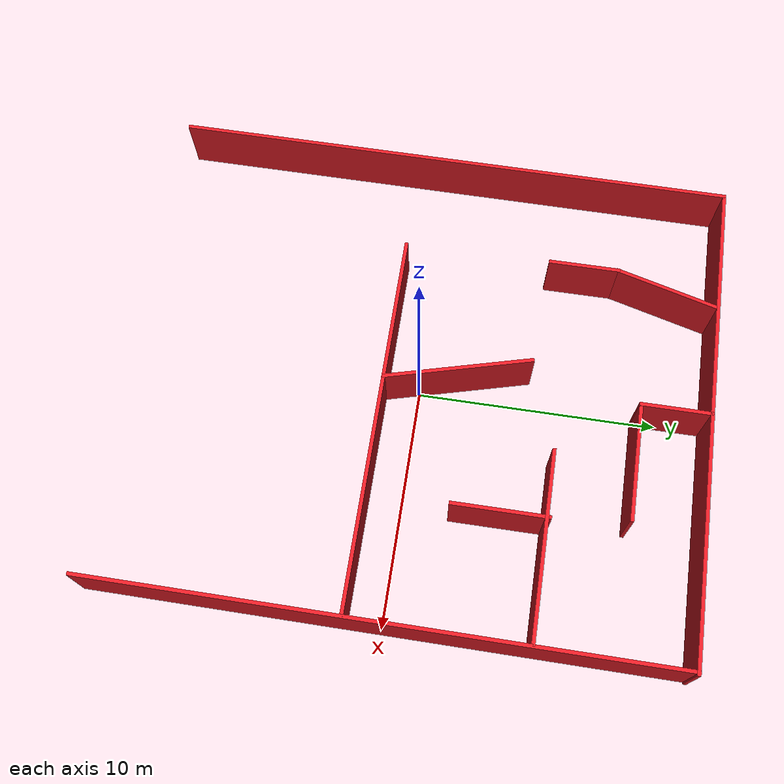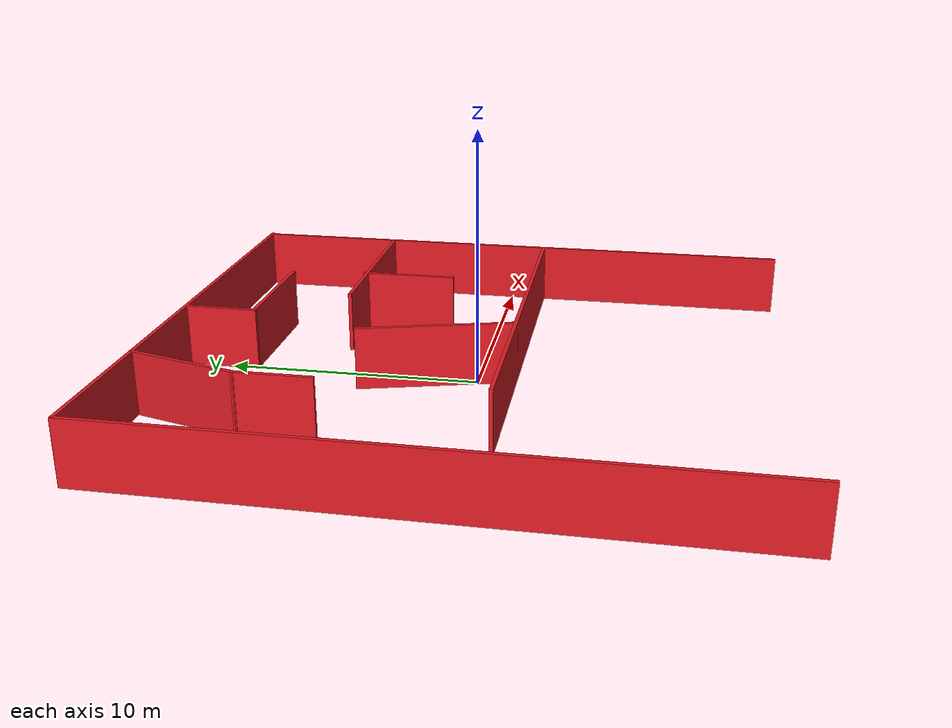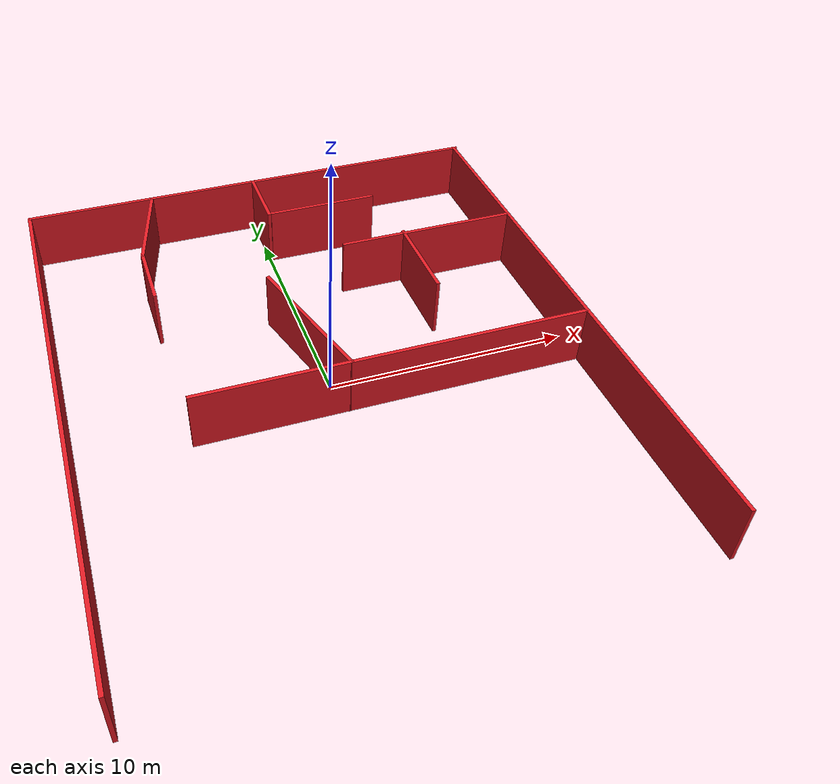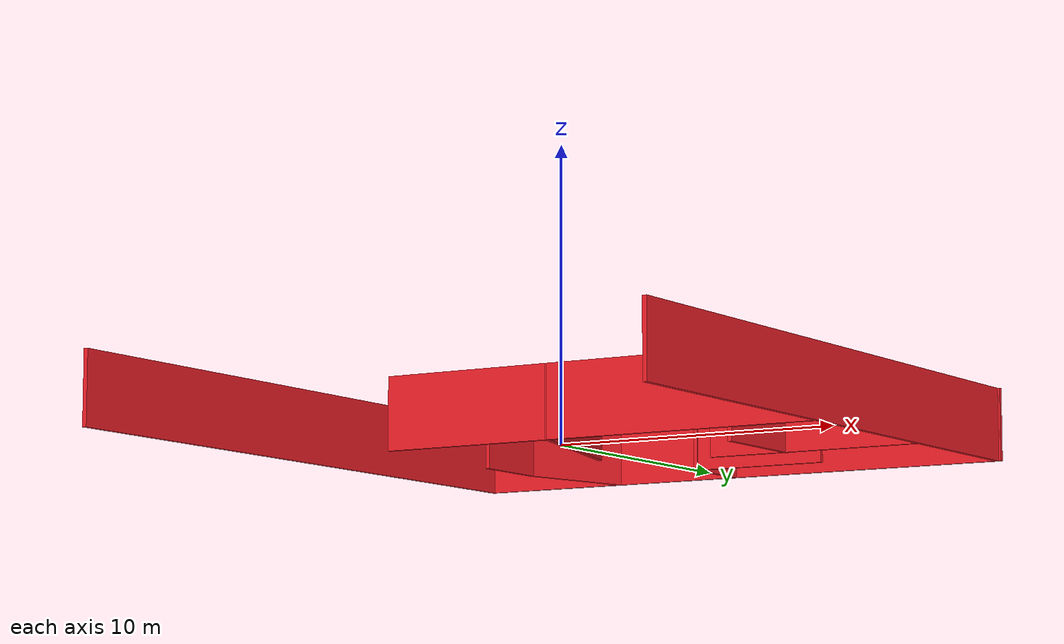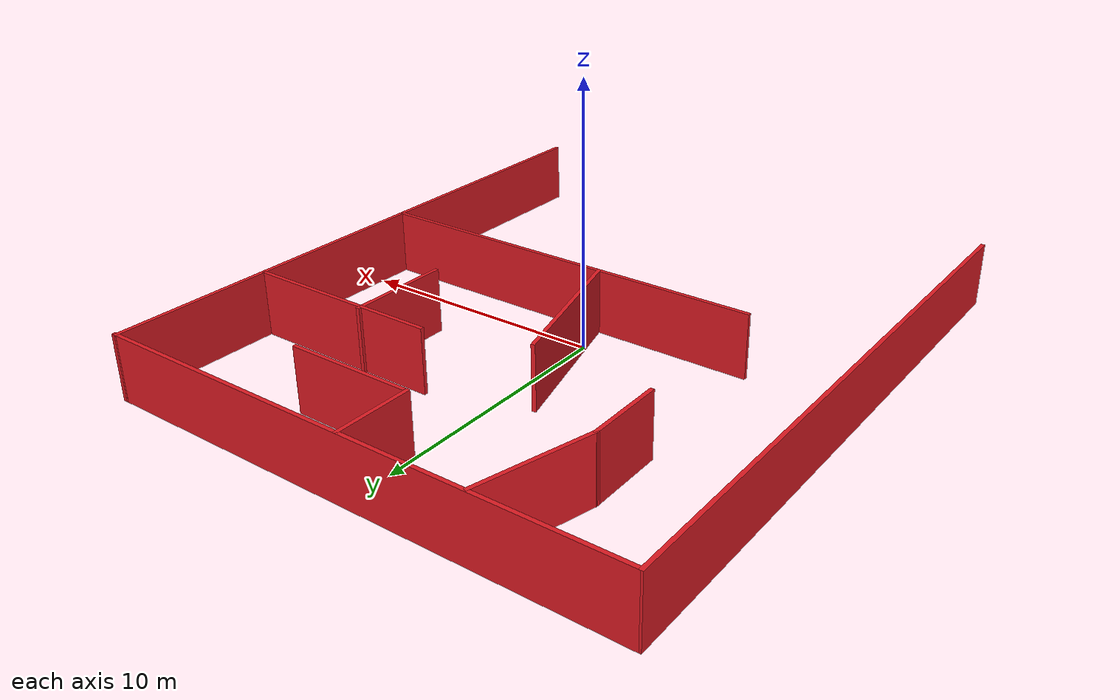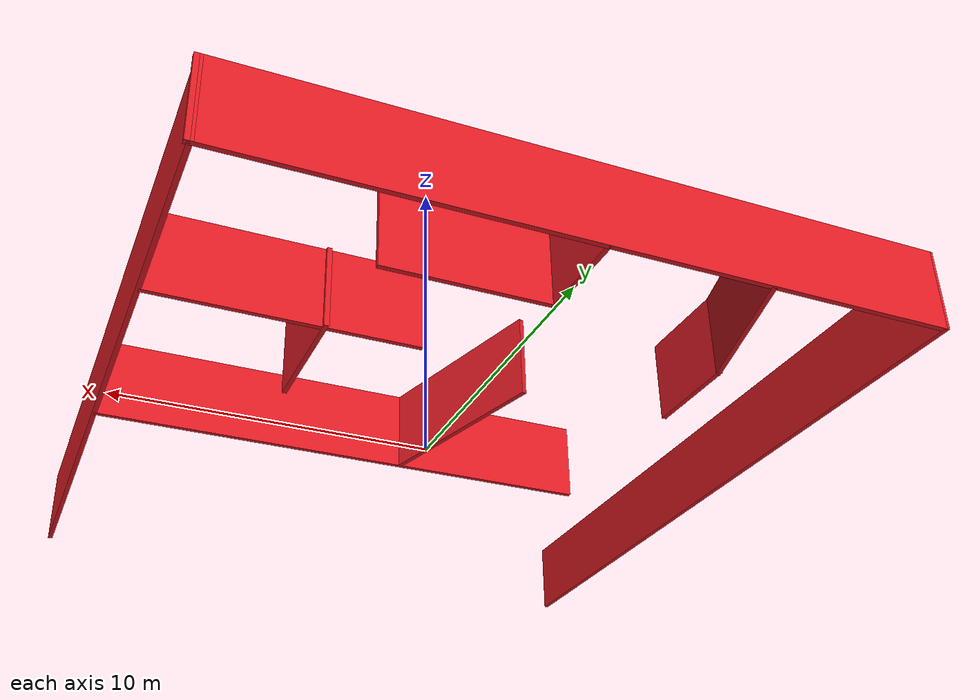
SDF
<?xml version='1.0'?>
<sdf version='1.7'>
  <model name='BuildingEnv'>
    <link name='Wall_0'>
      <pose>0.08905 11.8603 0 0 -0 0</pose>
      <self_collide>0</self_collide>
      <enable_wind>0</enable_wind>
      <kinematic>0</kinematic>
      <visual name='Wall_0_Visual'>
        <pose>0 0 1.25 0 -0 0</pose>
        <geometry>
          <box>
            <size>20.5 0.15 2.5</size>
          </box>
        </geometry>
        <material>
          <script>
            <uri>file://media/materials/scripts/gazebo.material</uri>
            <name>Gazebo/Grey</name>
          </script>
          <ambient>0.878431 0.105882 0.141176 1</ambient>
          <shader type='pixel'/>
        </material>
        <meta>
          <layer>0</layer>
        </meta>
        <transparency>0</transparency>
        <cast_shadows>1</cast_shadows>
      </visual>
      <collision name='Wall_0_Collision'>
        <laser_retro>0</laser_retro>
        <max_contacts>10</max_contacts>
        <pose>0 0 1.25 0 -0 0</pose>
        <geometry>
          <box>
            <size>20.5 0.15 2.5</size>
          </box>
        </geometry>
        <surface>
          <friction>
            <ode>
              <mu>1</mu>
              <mu2>1</mu2>
              <fdir1>0 0 0</fdir1>
              <slip1>0</slip1>
              <slip2>0</slip2>
            </ode>
            <torsional>
              <coefficient>1</coefficient>
              <patch_radius>0</patch_radius>
              <surface_radius>0</surface_radius>
              <use_patch_radius>1</use_patch_radius>
              <ode>
                <slip>0</slip>
              </ode>
            </torsional>
          </friction>
          <bounce>
            <restitution_coefficient>0</restitution_coefficient>
            <threshold>1e+06</threshold>
          </bounce>
          <contact>
            <collide_without_contact>0</collide_without_contact>
            <collide_without_contact_bitmask>1</collide_without_contact_bitmask>
            <collide_bitmask>1</collide_bitmask>
            <ode>
              <soft_cfm>0</soft_cfm>
              <soft_erp>0.2</soft_erp>
              <kp>1e+13</kp>
              <kd>1</kd>
              <max_vel>0.01</max_vel>
              <min_depth>0</min_depth>
            </ode>
            <bullet>
              <split_impulse>1</split_impulse>
              <split_impulse_penetration_threshold>-0.01</split_impulse_penetration_threshold>
              <soft_cfm>0</soft_cfm>
              <soft_erp>0.2</soft_erp>
              <kp>1e+13</kp>
              <kd>1</kd>
            </bullet>
          </contact>
        </surface>
      </collision>
    </link>
    <link name='Wall_13'>
      <pose>2.1545 -1.41675 0 0 -0 3.14159</pose>
      <self_collide>0</self_collide>
      <enable_wind>0</enable_wind>
      <kinematic>0</kinematic>
      <visual name='Wall_13_Visual'>
        <pose>0 0 1.25 0 -0 0</pose>
        <geometry>
          <box>
            <size>16 0.15 2.5</size>
          </box>
        </geometry>
        <material>
          <script>
            <uri>file://media/materials/scripts/gazebo.material</uri>
            <name>Gazebo/Grey</name>
          </script>
          <ambient>0.878431 0.105882 0.141176 1</ambient>
          <shader type='pixel'/>
        </material>
        <meta>
          <layer>0</layer>
        </meta>
        <transparency>0</transparency>
        <cast_shadows>1</cast_shadows>
      </visual>
      <collision name='Wall_13_Collision'>
        <laser_retro>0</laser_retro>
        <max_contacts>10</max_contacts>
        <pose>0 0 1.25 0 -0 0</pose>
        <geometry>
          <box>
            <size>16 0.15 2.5</size>
          </box>
        </geometry>
        <surface>
          <friction>
            <ode>
              <mu>1</mu>
              <mu2>1</mu2>
              <fdir1>0 0 0</fdir1>
              <slip1>0</slip1>
              <slip2>0</slip2>
            </ode>
            <torsional>
              <coefficient>1</coefficient>
              <patch_radius>0</patch_radius>
              <surface_radius>0</surface_radius>
              <use_patch_radius>1</use_patch_radius>
              <ode>
                <slip>0</slip>
              </ode>
            </torsional>
          </friction>
          <bounce>
            <restitution_coefficient>0</restitution_coefficient>
            <threshold>1e+06</threshold>
          </bounce>
          <contact>
            <collide_without_contact>0</collide_without_contact>
            <collide_without_contact_bitmask>1</collide_without_contact_bitmask>
            <collide_bitmask>1</collide_bitmask>
            <ode>
              <soft_cfm>0</soft_cfm>
              <soft_erp>0.2</soft_erp>
              <kp>1e+13</kp>
              <kd>1</kd>
              <max_vel>0.01</max_vel>
              <min_depth>0</min_depth>
            </ode>
            <bullet>
              <split_impulse>1</split_impulse>
              <split_impulse_penetration_threshold>-0.01</split_impulse_penetration_threshold>
              <soft_cfm>0</soft_cfm>
              <soft_erp>0.2</soft_erp>
              <kp>1e+13</kp>
              <kd>1</kd>
            </bullet>
          </contact>
        </surface>
      </collision>
    </link>
    <link name='Wall_15'>
      <pose>6.28482 5.76033 0 0 -0 3.14159</pose>
      <self_collide>0</self_collide>
      <enable_wind>0</enable_wind>
      <kinematic>0</kinematic>
      <visual name='Wall_15_Visual'>
        <pose>0 0 1.25 0 -0 0</pose>
        <geometry>
          <box>
            <size>7.75 0.15 2.5</size>
          </box>
        </geometry>
        <material>
          <script>
            <uri>file://media/materials/scripts/gazebo.material</uri>
            <name>Gazebo/Grey</name>
          </script>
          <ambient>0.878431 0.105882 0.141176 1</ambient>
          <shader type='pixel'/>
        </material>
        <meta>
          <layer>0</layer>
        </meta>
        <transparency>0</transparency>
        <cast_shadows>1</cast_shadows>
      </visual>
      <collision name='Wall_15_Collision'>
        <laser_retro>0</laser_retro>
        <max_contacts>10</max_contacts>
        <pose>0 0 1.25 0 -0 0</pose>
        <geometry>
          <box>
            <size>7.75 0.15 2.5</size>
          </box>
        </geometry>
        <surface>
          <friction>
            <ode>
              <mu>1</mu>
              <mu2>1</mu2>
              <fdir1>0 0 0</fdir1>
              <slip1>0</slip1>
              <slip2>0</slip2>
            </ode>
            <torsional>
              <coefficient>1</coefficient>
              <patch_radius>0</patch_radius>
              <surface_radius>0</surface_radius>
              <use_patch_radius>1</use_patch_radius>
              <ode>
                <slip>0</slip>
              </ode>
            </torsional>
          </friction>
          <bounce>
            <restitution_coefficient>0</restitution_coefficient>
            <threshold>1e+06</threshold>
          </bounce>
          <contact>
            <collide_without_contact>0</collide_without_contact>
            <collide_without_contact_bitmask>1</collide_without_contact_bitmask>
            <collide_bitmask>1</collide_bitmask>
            <ode>
              <soft_cfm>0</soft_cfm>
              <soft_erp>0.2</soft_erp>
              <kp>1e+13</kp>
              <kd>1</kd>
              <max_vel>0.01</max_vel>
              <min_depth>0</min_depth>
            </ode>
            <bullet>
              <split_impulse>1</split_impulse>
              <split_impulse_penetration_threshold>-0.01</split_impulse_penetration_threshold>
              <soft_cfm>0</soft_cfm>
              <soft_erp>0.2</soft_erp>
              <kp>1e+13</kp>
              <kd>1</kd>
            </bullet>
          </contact>
        </surface>
      </collision>
    </link>
    <link name='Wall_17'>
      <pose>5.21609 3.94233 0 0 0 -1.5708</pose>
      <self_collide>0</self_collide>
      <enable_wind>0</enable_wind>
      <kinematic>0</kinematic>
      <visual name='Wall_17_Visual'>
        <pose>0 0 1.25 0 -0 0</pose>
        <geometry>
          <box>
            <size>4 0.15 2.5</size>
          </box>
        </geometry>
        <material>
          <script>
            <uri>file://media/materials/scripts/gazebo.material</uri>
            <name>Gazebo/Grey</name>
          </script>
          <ambient>0.878431 0.105882 0.141176 1</ambient>
          <shader type='pixel'/>
        </material>
        <meta>
          <layer>0</layer>
        </meta>
        <transparency>0</transparency>
        <cast_shadows>1</cast_shadows>
      </visual>
      <collision name='Wall_17_Collision'>
        <laser_retro>0</laser_retro>
        <max_contacts>10</max_contacts>
        <pose>0 0 1.25 0 -0 0</pose>
        <geometry>
          <box>
            <size>4 0.15 2.5</size>
          </box>
        </geometry>
        <surface>
          <friction>
            <ode>
              <mu>1</mu>
              <mu2>1</mu2>
              <fdir1>0 0 0</fdir1>
              <slip1>0</slip1>
              <slip2>0</slip2>
            </ode>
            <torsional>
              <coefficient>1</coefficient>
              <patch_radius>0</patch_radius>
              <surface_radius>0</surface_radius>
              <use_patch_radius>1</use_patch_radius>
              <ode>
                <slip>0</slip>
              </ode>
            </torsional>
          </friction>
          <bounce>
            <restitution_coefficient>0</restitution_coefficient>
            <threshold>1e+06</threshold>
          </bounce>
          <contact>
            <collide_without_contact>0</collide_without_contact>
            <collide_without_contact_bitmask>1</collide_without_contact_bitmask>
            <collide_bitmask>1</collide_bitmask>
            <ode>
              <soft_cfm>0</soft_cfm>
              <soft_erp>0.2</soft_erp>
              <kp>1e+13</kp>
              <kd>1</kd>
              <max_vel>0.01</max_vel>
              <min_depth>0</min_depth>
            </ode>
            <bullet>
              <split_impulse>1</split_impulse>
              <split_impulse_penetration_threshold>-0.01</split_impulse_penetration_threshold>
              <soft_cfm>0</soft_cfm>
              <soft_erp>0.2</soft_erp>
              <kp>1e+13</kp>
              <kd>1</kd>
            </bullet>
          </contact>
        </surface>
      </collision>
    </link>
    <link name='Wall_19'>
      <pose>-5.29831 9.70522 0 0 0 -1.8326</pose>
      <self_collide>0</self_collide>
      <enable_wind>0</enable_wind>
      <kinematic>0</kinematic>
      <visual name='Wall_19_Visual'>
        <pose>0 0 1.25 0 -0 0</pose>
        <geometry>
          <box>
            <size>4.5 0.15 2.5</size>
          </box>
        </geometry>
        <material>
          <script>
            <uri>file://media/materials/scripts/gazebo.material</uri>
            <name>Gazebo/Grey</name>
          </script>
          <ambient>0.878431 0.105882 0.141176 1</ambient>
          <shader type='pixel'/>
        </material>
        <meta>
          <layer>0</layer>
        </meta>
        <transparency>0</transparency>
        <cast_shadows>1</cast_shadows>
      </visual>
      <collision name='Wall_19_Collision'>
        <laser_retro>0</laser_retro>
        <max_contacts>10</max_contacts>
        <pose>0 0 1.25 0 -0 0</pose>
        <geometry>
          <box>
            <size>4.5 0.15 2.5</size>
          </box>
        </geometry>
        <surface>
          <friction>
            <ode>
              <mu>1</mu>
              <mu2>1</mu2>
              <fdir1>0 0 0</fdir1>
              <slip1>0</slip1>
              <slip2>0</slip2>
            </ode>
            <torsional>
              <coefficient>1</coefficient>
              <patch_radius>0</patch_radius>
              <surface_radius>0</surface_radius>
              <use_patch_radius>1</use_patch_radius>
              <ode>
                <slip>0</slip>
              </ode>
            </torsional>
          </friction>
          <bounce>
            <restitution_coefficient>0</restitution_coefficient>
            <threshold>1e+06</threshold>
          </bounce>
          <contact>
            <collide_without_contact>0</collide_without_contact>
            <collide_without_contact_bitmask>1</collide_without_contact_bitmask>
            <collide_bitmask>1</collide_bitmask>
            <ode>
              <soft_cfm>0</soft_cfm>
              <soft_erp>0.2</soft_erp>
              <kp>1e+13</kp>
              <kd>1</kd>
              <max_vel>0.01</max_vel>
              <min_depth>0</min_depth>
            </ode>
            <bullet>
              <split_impulse>1</split_impulse>
              <split_impulse_penetration_threshold>-0.01</split_impulse_penetration_threshold>
              <soft_cfm>0</soft_cfm>
              <soft_erp>0.2</soft_erp>
              <kp>1e+13</kp>
              <kd>1</kd>
            </bullet>
          </contact>
        </surface>
      </collision>
    </link>
    <link name='Wall_2'>
      <pose>10.1398 0 0 0 0 -1.57531</pose>
      <self_collide>0</self_collide>
      <enable_wind>0</enable_wind>
      <kinematic>0</kinematic>
      <visual name='Wall_2_Visual'>
        <pose>0 0 1.25 0 -0 0</pose>
        <geometry>
          <box>
            <size>23.8709 0.15 2.5</size>
          </box>
        </geometry>
        <material>
          <script>
            <uri>file://media/materials/scripts/gazebo.material</uri>
            <name>Gazebo/Grey</name>
          </script>
          <ambient>0.878431 0.105882 0.141176 1</ambient>
          <shader type='pixel'/>
        </material>
        <meta>
          <layer>0</layer>
        </meta>
        <transparency>0</transparency>
        <cast_shadows>1</cast_shadows>
      </visual>
      <collision name='Wall_2_Collision'>
        <laser_retro>0</laser_retro>
        <max_contacts>10</max_contacts>
        <pose>0 0 1.25 0 -0 0</pose>
        <geometry>
          <box>
            <size>23.8709 0.15 2.5</size>
          </box>
        </geometry>
        <surface>
          <friction>
            <ode>
              <mu>1</mu>
              <mu2>1</mu2>
              <fdir1>0 0 0</fdir1>
              <slip1>0</slip1>
              <slip2>0</slip2>
            </ode>
            <torsional>
              <coefficient>1</coefficient>
              <patch_radius>0</patch_radius>
              <surface_radius>0</surface_radius>
              <use_patch_radius>1</use_patch_radius>
              <ode>
                <slip>0</slip>
              </ode>
            </torsional>
          </friction>
          <bounce>
            <restitution_coefficient>0</restitution_coefficient>
            <threshold>1e+06</threshold>
          </bounce>
          <contact>
            <collide_without_contact>0</collide_without_contact>
            <collide_without_contact_bitmask>1</collide_without_contact_bitmask>
            <collide_bitmask>1</collide_bitmask>
            <ode>
              <soft_cfm>0</soft_cfm>
              <soft_erp>0.2</soft_erp>
              <kp>1e+13</kp>
              <kd>1</kd>
              <max_vel>0.01</max_vel>
              <min_depth>0</min_depth>
            </ode>
            <bullet>
              <split_impulse>1</split_impulse>
              <split_impulse_penetration_threshold>-0.01</split_impulse_penetration_threshold>
              <soft_cfm>0</soft_cfm>
              <soft_erp>0.2</soft_erp>
              <kp>1e+13</kp>
              <kd>1</kd>
            </bullet>
          </contact>
        </surface>
      </collision>
    </link>
    <link name='Wall_21'>
      <pose>-5.86124 6.17933 0 0 0 -1.5708</pose>
      <self_collide>0</self_collide>
      <enable_wind>0</enable_wind>
      <kinematic>0</kinematic>
      <visual name='Wall_21_Visual'>
        <pose>0 0 1.25 0 -0 0</pose>
        <geometry>
          <box>
            <size>3 0.15 2.5</size>
          </box>
        </geometry>
        <material>
          <script>
            <uri>file://media/materials/scripts/gazebo.material</uri>
            <name>Gazebo/Grey</name>
          </script>
          <ambient>0.878431 0.105882 0.141176 1</ambient>
          <shader type='pixel'/>
        </material>
        <meta>
          <layer>0</layer>
        </meta>
        <transparency>0</transparency>
        <cast_shadows>1</cast_shadows>
      </visual>
      <collision name='Wall_21_Collision'>
        <laser_retro>0</laser_retro>
        <max_contacts>10</max_contacts>
        <pose>0 0 1.25 0 -0 0</pose>
        <geometry>
          <box>
            <size>3 0.15 2.5</size>
          </box>
        </geometry>
        <surface>
          <friction>
            <ode>
              <mu>1</mu>
              <mu2>1</mu2>
              <fdir1>0 0 0</fdir1>
              <slip1>0</slip1>
              <slip2>0</slip2>
            </ode>
            <torsional>
              <coefficient>1</coefficient>
              <patch_radius>0</patch_radius>
              <surface_radius>0</surface_radius>
              <use_patch_radius>1</use_patch_radius>
              <ode>
                <slip>0</slip>
              </ode>
            </torsional>
          </friction>
          <bounce>
            <restitution_coefficient>0</restitution_coefficient>
            <threshold>1e+06</threshold>
          </bounce>
          <contact>
            <collide_without_contact>0</collide_without_contact>
            <collide_without_contact_bitmask>1</collide_without_contact_bitmask>
            <collide_bitmask>1</collide_bitmask>
            <ode>
              <soft_cfm>0</soft_cfm>
              <soft_erp>0.2</soft_erp>
              <kp>1e+13</kp>
              <kd>1</kd>
              <max_vel>0.01</max_vel>
              <min_depth>0</min_depth>
            </ode>
            <bullet>
              <split_impulse>1</split_impulse>
              <split_impulse_penetration_threshold>-0.01</split_impulse_penetration_threshold>
              <soft_cfm>0</soft_cfm>
              <soft_erp>0.2</soft_erp>
              <kp>1e+13</kp>
              <kd>1</kd>
            </bullet>
          </contact>
        </surface>
      </collision>
    </link>
    <link name='Wall_23'>
      <pose>-0.442038 1.53707 0 0 -0 1.8326</pose>
      <self_collide>0</self_collide>
      <enable_wind>0</enable_wind>
      <kinematic>0</kinematic>
      <visual name='Wall_23_Visual'>
        <pose>0 0 1.25 0 -0 0</pose>
        <geometry>
          <box>
            <size>6.25 0.15 2.5</size>
          </box>
        </geometry>
        <material>
          <script>
            <uri>file://media/materials/scripts/gazebo.material</uri>
            <name>Gazebo/Grey</name>
          </script>
          <ambient>0.878431 0.105882 0.141176 1</ambient>
          <shader type='pixel'/>
        </material>
        <meta>
          <layer>0</layer>
        </meta>
        <transparency>0</transparency>
        <cast_shadows>1</cast_shadows>
      </visual>
      <collision name='Wall_23_Collision'>
        <laser_retro>0</laser_retro>
        <max_contacts>10</max_contacts>
        <pose>0 0 1.25 0 -0 0</pose>
        <geometry>
          <box>
            <size>6.25 0.15 2.5</size>
          </box>
        </geometry>
        <surface>
          <friction>
            <ode>
              <mu>1</mu>
              <mu2>1</mu2>
              <fdir1>0 0 0</fdir1>
              <slip1>0</slip1>
              <slip2>0</slip2>
            </ode>
            <torsional>
              <coefficient>1</coefficient>
              <patch_radius>0</patch_radius>
              <surface_radius>0</surface_radius>
              <use_patch_radius>1</use_patch_radius>
              <ode>
                <slip>0</slip>
              </ode>
            </torsional>
          </friction>
          <bounce>
            <restitution_coefficient>0</restitution_coefficient>
            <threshold>1e+06</threshold>
          </bounce>
          <contact>
            <collide_without_contact>0</collide_without_contact>
            <collide_without_contact_bitmask>1</collide_without_contact_bitmask>
            <collide_bitmask>1</collide_bitmask>
            <ode>
              <soft_cfm>0</soft_cfm>
              <soft_erp>0.2</soft_erp>
              <kp>1e+13</kp>
              <kd>1</kd>
              <max_vel>0.01</max_vel>
              <min_depth>0</min_depth>
            </ode>
            <bullet>
              <split_impulse>1</split_impulse>
              <split_impulse_penetration_threshold>-0.01</split_impulse_penetration_threshold>
              <soft_cfm>0</soft_cfm>
              <soft_erp>0.2</soft_erp>
              <kp>1e+13</kp>
              <kd>1</kd>
            </bullet>
          </contact>
        </surface>
      </collision>
    </link>
    <link name='Wall_25'>
      <pose>0.026345 10.4346 0 0 0 -1.5708</pose>
      <self_collide>0</self_collide>
      <enable_wind>0</enable_wind>
      <kinematic>0</kinematic>
      <visual name='Wall_25_Visual'>
        <pose>0 0 1.25 0 -0 0</pose>
        <geometry>
          <box>
            <size>3 0.15 2.5</size>
          </box>
        </geometry>
        <material>
          <script>
            <uri>file://media/materials/scripts/gazebo.material</uri>
            <name>Gazebo/Grey</name>
          </script>
          <ambient>0.878431 0.105882 0.141176 1</ambient>
          <shader type='pixel'/>
        </material>
        <meta>
          <layer>0</layer>
        </meta>
        <transparency>0</transparency>
        <cast_shadows>1</cast_shadows>
      </visual>
      <collision name='Wall_25_Collision'>
        <laser_retro>0</laser_retro>
        <max_contacts>10</max_contacts>
        <pose>0 0 1.25 0 -0 0</pose>
        <geometry>
          <box>
            <size>3 0.15 2.5</size>
          </box>
        </geometry>
        <surface>
          <friction>
            <ode>
              <mu>1</mu>
              <mu2>1</mu2>
              <fdir1>0 0 0</fdir1>
              <slip1>0</slip1>
              <slip2>0</slip2>
            </ode>
            <torsional>
              <coefficient>1</coefficient>
              <patch_radius>0</patch_radius>
              <surface_radius>0</surface_radius>
              <use_patch_radius>1</use_patch_radius>
              <ode>
                <slip>0</slip>
              </ode>
            </torsional>
          </friction>
          <bounce>
            <restitution_coefficient>0</restitution_coefficient>
            <threshold>1e+06</threshold>
          </bounce>
          <contact>
            <collide_without_contact>0</collide_without_contact>
            <collide_without_contact_bitmask>1</collide_without_contact_bitmask>
            <collide_bitmask>1</collide_bitmask>
            <ode>
              <soft_cfm>0</soft_cfm>
              <soft_erp>0.2</soft_erp>
              <kp>1e+13</kp>
              <kd>1</kd>
              <max_vel>0.01</max_vel>
              <min_depth>0</min_depth>
            </ode>
            <bullet>
              <split_impulse>1</split_impulse>
              <split_impulse_penetration_threshold>-0.01</split_impulse_penetration_threshold>
              <soft_cfm>0</soft_cfm>
              <soft_erp>0.2</soft_erp>
              <kp>1e+13</kp>
              <kd>1</kd>
            </bullet>
          </contact>
        </surface>
      </collision>
    </link>
    <link name='Wall_27'>
      <pose>2.5136 9.00961 0 0 -0 0</pose>
      <self_collide>0</self_collide>
      <enable_wind>0</enable_wind>
      <kinematic>0</kinematic>
      <visual name='Wall_27_Visual'>
        <pose>0 0 1.25 0 -0 0</pose>
        <geometry>
          <box>
            <size>4.8035 0.15 2.5</size>
          </box>
        </geometry>
        <material>
          <script>
            <uri>file://media/materials/scripts/gazebo.material</uri>
            <name>Gazebo/Grey</name>
          </script>
          <ambient>0.878431 0.105882 0.141176 1</ambient>
          <shader type='pixel'/>
        </material>
        <meta>
          <layer>0</layer>
        </meta>
        <transparency>0</transparency>
        <cast_shadows>1</cast_shadows>
      </visual>
      <collision name='Wall_27_Collision'>
        <laser_retro>0</laser_retro>
        <max_contacts>10</max_contacts>
        <pose>0 0 1.25 0 -0 0</pose>
        <geometry>
          <box>
            <size>4.8035 0.15 2.5</size>
          </box>
        </geometry>
        <surface>
          <friction>
            <ode>
              <mu>1</mu>
              <mu2>1</mu2>
              <fdir1>0 0 0</fdir1>
              <slip1>0</slip1>
              <slip2>0</slip2>
            </ode>
            <torsional>
              <coefficient>1</coefficient>
              <patch_radius>0</patch_radius>
              <surface_radius>0</surface_radius>
              <use_patch_radius>1</use_patch_radius>
              <ode>
                <slip>0</slip>
              </ode>
            </torsional>
          </friction>
          <bounce>
            <restitution_coefficient>0</restitution_coefficient>
            <threshold>1e+06</threshold>
          </bounce>
          <contact>
            <collide_without_contact>0</collide_without_contact>
            <collide_without_contact_bitmask>1</collide_without_contact_bitmask>
            <collide_bitmask>1</collide_bitmask>
            <ode>
              <soft_cfm>0</soft_cfm>
              <soft_erp>0.2</soft_erp>
              <kp>1e+13</kp>
              <kd>1</kd>
              <max_vel>0.01</max_vel>
              <min_depth>0</min_depth>
            </ode>
            <bullet>
              <split_impulse>1</split_impulse>
              <split_impulse_penetration_threshold>-0.01</split_impulse_penetration_threshold>
              <soft_cfm>0</soft_cfm>
              <soft_erp>0.2</soft_erp>
              <kp>1e+13</kp>
              <kd>1</kd>
            </bullet>
          </contact>
        </surface>
      </collision>
    </link>
    <link name='Wall_4'>
      <pose>-10.2102 0 0 0 0 -1.57531</pose>
      <self_collide>0</self_collide>
      <enable_wind>0</enable_wind>
      <kinematic>0</kinematic>
      <visual name='Wall_4_Visual'>
        <pose>0 0 1.25 0 -0 0</pose>
        <geometry>
          <box>
            <size>23.8709 0.15 2.5</size>
          </box>
        </geometry>
        <material>
          <script>
            <uri>file://media/materials/scripts/gazebo.material</uri>
            <name>Gazebo/Grey</name>
          </script>
          <ambient>0.878431 0.105882 0.141176 1</ambient>
          <shader type='pixel'/>
        </material>
        <meta>
          <layer>0</layer>
        </meta>
        <transparency>0</transparency>
        <cast_shadows>1</cast_shadows>
      </visual>
      <collision name='Wall_4_Collision'>
        <laser_retro>0</laser_retro>
        <max_contacts>10</max_contacts>
        <pose>0 0 1.25 0 -0 0</pose>
        <geometry>
          <box>
            <size>23.8709 0.15 2.5</size>
          </box>
        </geometry>
        <surface>
          <friction>
            <ode>
              <mu>1</mu>
              <mu2>1</mu2>
              <fdir1>0 0 0</fdir1>
              <slip1>0</slip1>
              <slip2>0</slip2>
            </ode>
            <torsional>
              <coefficient>1</coefficient>
              <patch_radius>0</patch_radius>
              <surface_radius>0</surface_radius>
              <use_patch_radius>1</use_patch_radius>
              <ode>
                <slip>0</slip>
              </ode>
            </torsional>
          </friction>
          <bounce>
            <restitution_coefficient>0</restitution_coefficient>
            <threshold>1e+06</threshold>
          </bounce>
          <contact>
            <collide_without_contact>0</collide_without_contact>
            <collide_without_contact_bitmask>1</collide_without_contact_bitmask>
            <collide_bitmask>1</collide_bitmask>
            <ode>
              <soft_cfm>0</soft_cfm>
              <soft_erp>0.2</soft_erp>
              <kp>1e+13</kp>
              <kd>1</kd>
              <max_vel>0.01</max_vel>
              <min_depth>0</min_depth>
            </ode>
            <bullet>
              <split_impulse>1</split_impulse>
              <split_impulse_penetration_threshold>-0.01</split_impulse_penetration_threshold>
              <soft_cfm>0</soft_cfm>
              <soft_erp>0.2</soft_erp>
              <kp>1e+13</kp>
              <kd>1</kd>
            </bullet>
          </contact>
        </surface>
      </collision>
    </link>
    <static>1</static>
    <allow_auto_disable>1</allow_auto_disable>
  </model>
</sdf>
